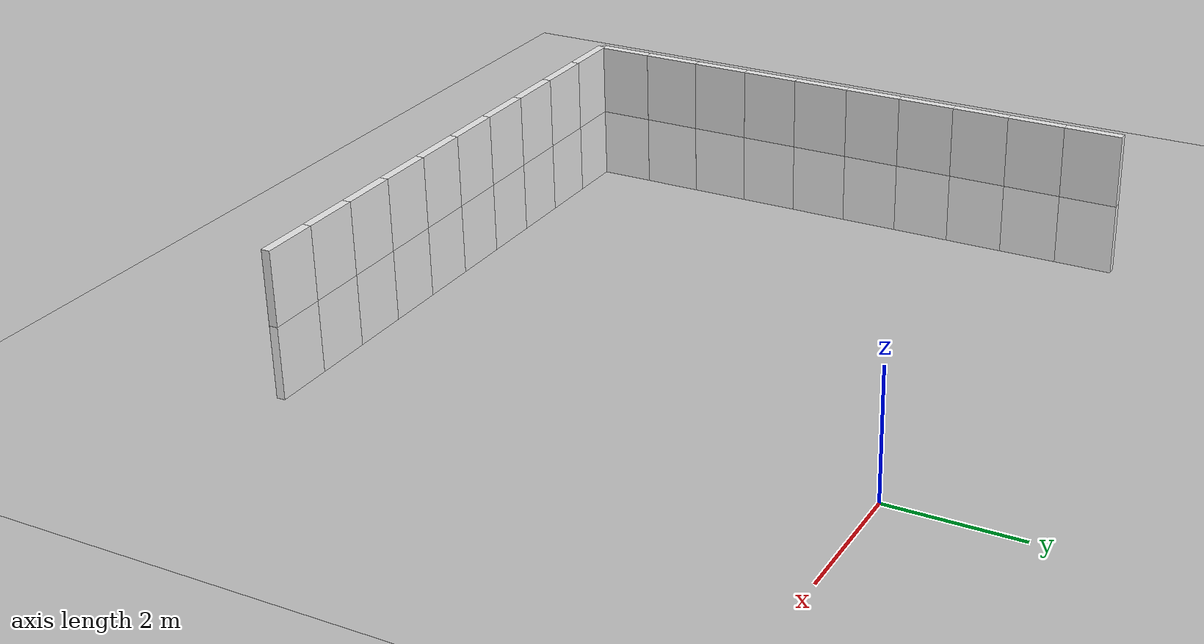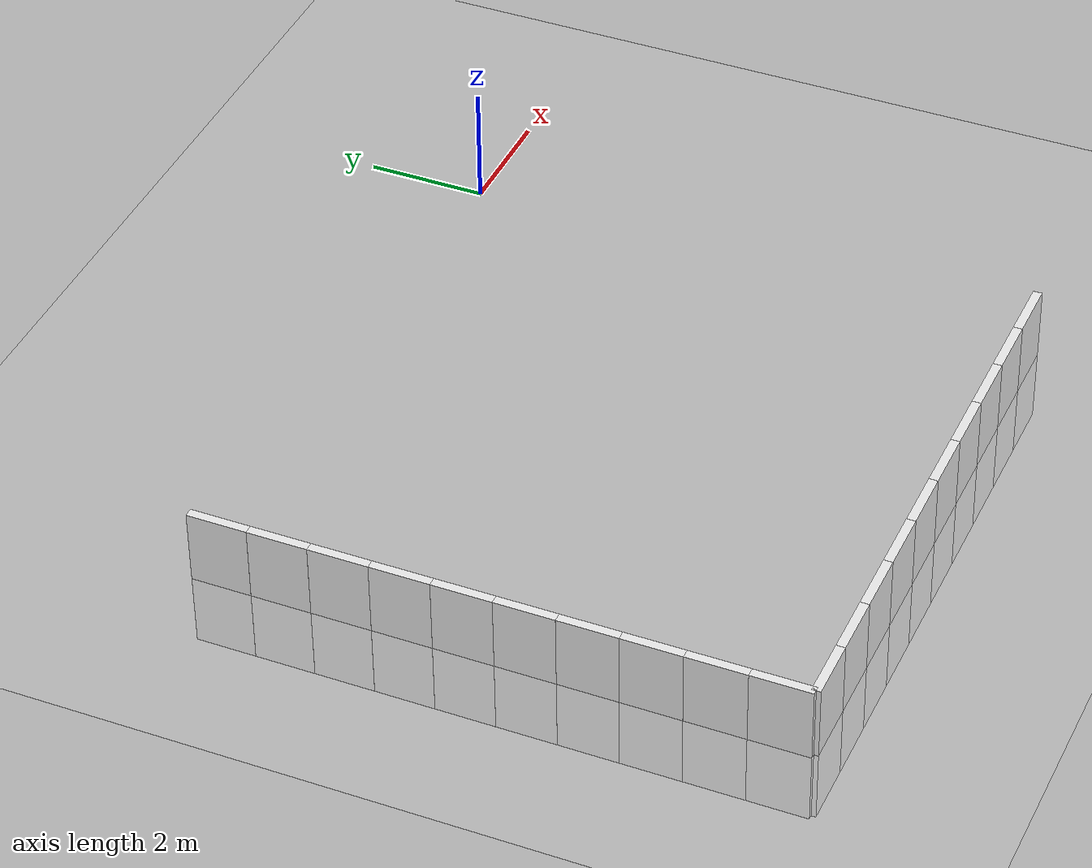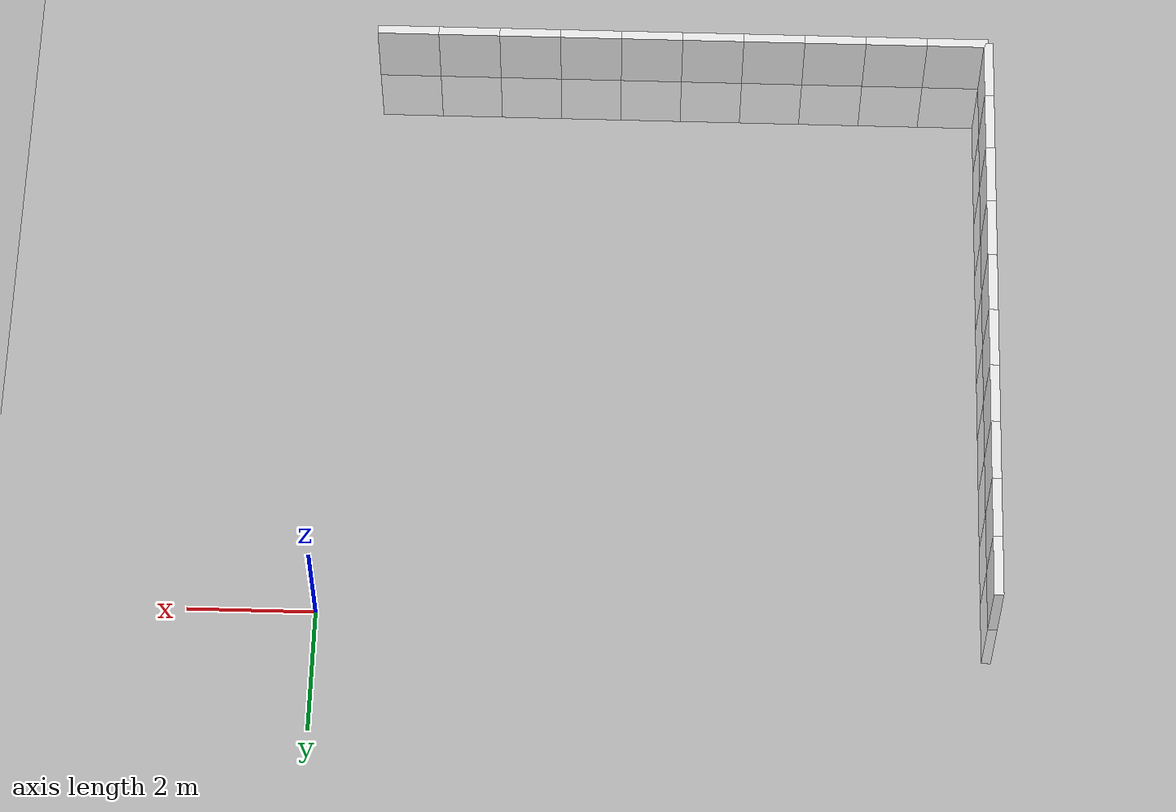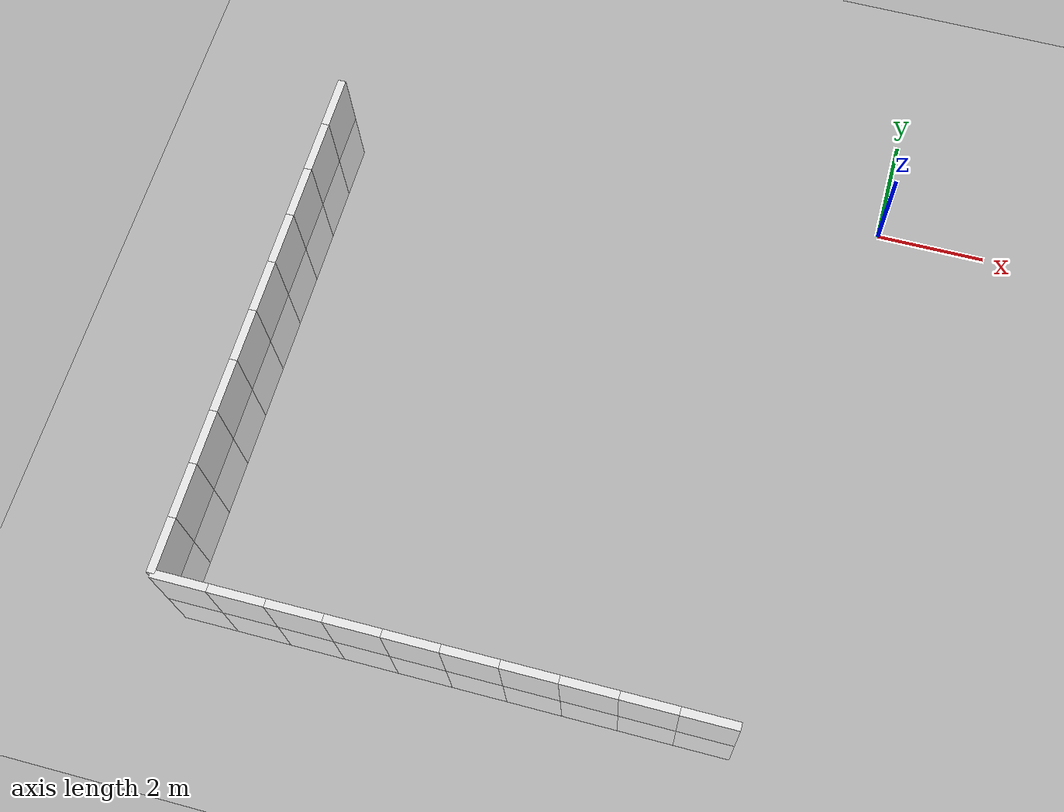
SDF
<sdf version="1.7">
 <world name="default">
  <model name="ground_plane">
   <static>1</static>
   <link name="link">
    <collision name="collision">
     <geometry><plane><normal>0 0 1</normal><size>100 100</size></plane></geometry>
     <surface>
      <contact><collide_bitmask>65535</collide_bitmask></contact>
      <friction><ode><mu>100</mu><mu2>50</mu2></ode></friction>
     </surface>
    </collision>
    <visual name="visual">
     <cast_shadows>0</cast_shadows>
     <geometry><plane><normal>0 0 1</normal><size>100 100</size></plane></geometry>
     <material>
      <script><uri>file://media/materials/scripts/gazebo.material</uri><name>Gazebo/Grey</name></script>
     </material>
    </visual>
   </link>
  </model>
  <model name="wall_right_12">
   <link name="Wall_10">
    <inertial>
     <mass>1</mass>
     <inertia><ixx>1</ixx><ixy>0</ixy><ixz>0</ixz><iyy>1</iyy><iyz>0</iyz><izz>1</izz></inertia>
    </inertial>
    <visual name="Wall_10_Visual_0">
     <geometry><box><size>1 0.15 2.5</size></box></geometry>
     <material>
      <script>
       <uri>model://wall/materials/scripts</uri>
       <uri>model://wall/materials/textures</uri>
       <name>wall_white</name>
      </script>
      <shader type="pixel"><normal_map>__default__</normal_map></shader>
      <ambient>1 1 1 1</ambient>
      <diffuse>1 1 1 1</diffuse>
      <specular>0 0 0 1</specular>
      <emissive>0 0 0 1</emissive>
     </material>
     <meta><layer>0</layer></meta>
    </visual>
    <collision name="Wall_10_Collision_0">
     <geometry><box><size>1 0.15 2.5</size></box></geometry>
     <surface>
      <friction>
       <ode><mu>1</mu><mu2>1</mu2><fdir1>0 0 0</fdir1><slip1>0</slip1><slip2>0</slip2></ode>
       <torsional>
        <coefficient>1</coefficient>
        <patch_radius>0</patch_radius>
        <surface_radius>0</surface_radius>
        <use_patch_radius>1</use_patch_radius>
        <ode><slip>0</slip></ode>
       </torsional>
      </friction>
      <bounce><restitution_coefficient>0</restitution_coefficient><threshold>1e+06</threshold></bounce>
      <contact>
       <collide_without_contact>0</collide_without_contact>
       <collide_without_contact_bitmask>1</collide_without_contact_bitmask>
       <collide_bitmask>1</collide_bitmask>
       <ode>
        <soft_cfm>0</soft_cfm>
        <soft_erp>0.2</soft_erp>
        <kp>1e+13</kp>
        <kd>1</kd>
        <max_vel>0.01</max_vel>
        <min_depth>0</min_depth>
       </ode>
       <bullet>
        <split_impulse>1</split_impulse>
        <split_impulse_penetration_threshold>-0.01</split_impulse_penetration_threshold>
        <soft_cfm>0</soft_cfm>
        <soft_erp>0.2</soft_erp>
        <kp>1e+13</kp>
        <kd>1</kd>
       </bullet>
      </contact>
     </surface>
    </collision>
   </link>
   <static>1</static>
   <pose>-1 -10 0 0 -0 0</pose>
  </model>
  <model name="wall_right_13">
   <link name="Wall_10">
    <inertial>
     <mass>1</mass>
     <inertia><ixx>1</ixx><ixy>0</ixy><ixz>0</ixz><iyy>1</iyy><iyz>0</iyz><izz>1</izz></inertia>
    </inertial>
    <visual name="Wall_10_Visual_0">
     <geometry><box><size>1 0.15 2.5</size></box></geometry>
     <material>
      <script>
       <uri>model://wall/materials/scripts</uri>
       <uri>model://wall/materials/textures</uri>
       <name>wall_white</name>
      </script>
      <shader type="pixel"><normal_map>__default__</normal_map></shader>
      <ambient>1 1 1 1</ambient>
      <diffuse>1 1 1 1</diffuse>
      <specular>0 0 0 1</specular>
      <emissive>0 0 0 1</emissive>
     </material>
     <meta><layer>0</layer></meta>
    </visual>
    <collision name="Wall_10_Collision_0">
     <geometry><box><size>1 0.15 2.5</size></box></geometry>
     <surface>
      <friction>
       <ode><mu>1</mu><mu2>1</mu2><fdir1>0 0 0</fdir1><slip1>0</slip1><slip2>0</slip2></ode>
       <torsional>
        <coefficient>1</coefficient>
        <patch_radius>0</patch_radius>
        <surface_radius>0</surface_radius>
        <use_patch_radius>1</use_patch_radius>
        <ode><slip>0</slip></ode>
       </torsional>
      </friction>
      <bounce><restitution_coefficient>0</restitution_coefficient><threshold>1e+06</threshold></bounce>
      <contact>
       <collide_without_contact>0</collide_without_contact>
       <collide_without_contact_bitmask>1</collide_without_contact_bitmask>
       <collide_bitmask>1</collide_bitmask>
       <ode>
        <soft_cfm>0</soft_cfm>
        <soft_erp>0.2</soft_erp>
        <kp>1e+13</kp>
        <kd>1</kd>
        <max_vel>0.01</max_vel>
        <min_depth>0</min_depth>
       </ode>
       <bullet>
        <split_impulse>1</split_impulse>
        <split_impulse_penetration_threshold>-0.01</split_impulse_penetration_threshold>
        <soft_cfm>0</soft_cfm>
        <soft_erp>0.2</soft_erp>
        <kp>1e+13</kp>
        <kd>1</kd>
       </bullet>
      </contact>
     </surface>
    </collision>
   </link>
   <static>1</static>
   <pose>-2 -10 0 0 -0 0</pose>
  </model>
  <model name="wall_right_14">
   <link name="Wall_10">
    <inertial>
     <mass>1</mass>
     <inertia><ixx>1</ixx><ixy>0</ixy><ixz>0</ixz><iyy>1</iyy><iyz>0</iyz><izz>1</izz></inertia>
    </inertial>
    <visual name="Wall_10_Visual_0">
     <geometry><box><size>1 0.15 2.5</size></box></geometry>
     <material>
      <script>
       <uri>model://wall/materials/scripts</uri>
       <uri>model://wall/materials/textures</uri>
       <name>wall_white</name>
      </script>
      <shader type="pixel"><normal_map>__default__</normal_map></shader>
      <ambient>1 1 1 1</ambient>
      <diffuse>1 1 1 1</diffuse>
      <specular>0 0 0 1</specular>
      <emissive>0 0 0 1</emissive>
     </material>
     <meta><layer>0</layer></meta>
    </visual>
    <collision name="Wall_10_Collision_0">
     <geometry><box><size>1 0.15 2.5</size></box></geometry>
     <surface>
      <friction>
       <ode><mu>1</mu><mu2>1</mu2><fdir1>0 0 0</fdir1><slip1>0</slip1><slip2>0</slip2></ode>
       <torsional>
        <coefficient>1</coefficient>
        <patch_radius>0</patch_radius>
        <surface_radius>0</surface_radius>
        <use_patch_radius>1</use_patch_radius>
        <ode><slip>0</slip></ode>
       </torsional>
      </friction>
      <bounce><restitution_coefficient>0</restitution_coefficient><threshold>1e+06</threshold></bounce>
      <contact>
       <collide_without_contact>0</collide_without_contact>
       <collide_without_contact_bitmask>1</collide_without_contact_bitmask>
       <collide_bitmask>1</collide_bitmask>
       <ode>
        <soft_cfm>0</soft_cfm>
        <soft_erp>0.2</soft_erp>
        <kp>1e+13</kp>
        <kd>1</kd>
        <max_vel>0.01</max_vel>
        <min_depth>0</min_depth>
       </ode>
       <bullet>
        <split_impulse>1</split_impulse>
        <split_impulse_penetration_threshold>-0.01</split_impulse_penetration_threshold>
        <soft_cfm>0</soft_cfm>
        <soft_erp>0.2</soft_erp>
        <kp>1e+13</kp>
        <kd>1</kd>
       </bullet>
      </contact>
     </surface>
    </collision>
   </link>
   <static>1</static>
   <pose>-3 -10 0 0 -0 0</pose>
  </model>
  <model name="wall_right_15">
   <link name="Wall_10">
    <inertial>
     <mass>1</mass>
     <inertia><ixx>1</ixx><ixy>0</ixy><ixz>0</ixz><iyy>1</iyy><iyz>0</iyz><izz>1</izz></inertia>
    </inertial>
    <visual name="Wall_10_Visual_0">
     <geometry><box><size>1 0.15 2.5</size></box></geometry>
     <material>
      <script>
       <uri>model://wall/materials/scripts</uri>
       <uri>model://wall/materials/textures</uri>
       <name>wall_white</name>
      </script>
      <shader type="pixel"><normal_map>__default__</normal_map></shader>
      <ambient>1 1 1 1</ambient>
      <diffuse>1 1 1 1</diffuse>
      <specular>0 0 0 1</specular>
      <emissive>0 0 0 1</emissive>
     </material>
     <meta><layer>0</layer></meta>
    </visual>
    <collision name="Wall_10_Collision_0">
     <geometry><box><size>1 0.15 2.5</size></box></geometry>
     <surface>
      <friction>
       <ode><mu>1</mu><mu2>1</mu2><fdir1>0 0 0</fdir1><slip1>0</slip1><slip2>0</slip2></ode>
       <torsional>
        <coefficient>1</coefficient>
        <patch_radius>0</patch_radius>
        <surface_radius>0</surface_radius>
        <use_patch_radius>1</use_patch_radius>
        <ode><slip>0</slip></ode>
       </torsional>
      </friction>
      <bounce><restitution_coefficient>0</restitution_coefficient><threshold>1e+06</threshold></bounce>
      <contact>
       <collide_without_contact>0</collide_without_contact>
       <collide_without_contact_bitmask>1</collide_without_contact_bitmask>
       <collide_bitmask>1</collide_bitmask>
       <ode>
        <soft_cfm>0</soft_cfm>
        <soft_erp>0.2</soft_erp>
        <kp>1e+13</kp>
        <kd>1</kd>
        <max_vel>0.01</max_vel>
        <min_depth>0</min_depth>
       </ode>
       <bullet>
        <split_impulse>1</split_impulse>
        <split_impulse_penetration_threshold>-0.01</split_impulse_penetration_threshold>
        <soft_cfm>0</soft_cfm>
        <soft_erp>0.2</soft_erp>
        <kp>1e+13</kp>
        <kd>1</kd>
       </bullet>
      </contact>
     </surface>
    </collision>
   </link>
   <static>1</static>
   <pose>-4 -10 0 0 -0 0</pose>
  </model>
  <model name="wall_right_16">
   <link name="Wall_10">
    <inertial>
     <mass>1</mass>
     <inertia><ixx>1</ixx><ixy>0</ixy><ixz>0</ixz><iyy>1</iyy><iyz>0</iyz><izz>1</izz></inertia>
    </inertial>
    <visual name="Wall_10_Visual_0">
     <geometry><box><size>1 0.15 2.5</size></box></geometry>
     <material>
      <script>
       <uri>model://wall/materials/scripts</uri>
       <uri>model://wall/materials/textures</uri>
       <name>wall_white</name>
      </script>
      <shader type="pixel"><normal_map>__default__</normal_map></shader>
      <ambient>1 1 1 1</ambient>
      <diffuse>1 1 1 1</diffuse>
      <specular>0 0 0 1</specular>
      <emissive>0 0 0 1</emissive>
     </material>
     <meta><layer>0</layer></meta>
    </visual>
    <collision name="Wall_10_Collision_0">
     <geometry><box><size>1 0.15 2.5</size></box></geometry>
     <surface>
      <friction>
       <ode><mu>1</mu><mu2>1</mu2><fdir1>0 0 0</fdir1><slip1>0</slip1><slip2>0</slip2></ode>
       <torsional>
        <coefficient>1</coefficient>
        <patch_radius>0</patch_radius>
        <surface_radius>0</surface_radius>
        <use_patch_radius>1</use_patch_radius>
        <ode><slip>0</slip></ode>
       </torsional>
      </friction>
      <bounce><restitution_coefficient>0</restitution_coefficient><threshold>1e+06</threshold></bounce>
      <contact>
       <collide_without_contact>0</collide_without_contact>
       <collide_without_contact_bitmask>1</collide_without_contact_bitmask>
       <collide_bitmask>1</collide_bitmask>
       <ode>
        <soft_cfm>0</soft_cfm>
        <soft_erp>0.2</soft_erp>
        <kp>1e+13</kp>
        <kd>1</kd>
        <max_vel>0.01</max_vel>
        <min_depth>0</min_depth>
       </ode>
       <bullet>
        <split_impulse>1</split_impulse>
        <split_impulse_penetration_threshold>-0.01</split_impulse_penetration_threshold>
        <soft_cfm>0</soft_cfm>
        <soft_erp>0.2</soft_erp>
        <kp>1e+13</kp>
        <kd>1</kd>
       </bullet>
      </contact>
     </surface>
    </collision>
   </link>
   <static>1</static>
   <pose>-5 -10 0 0 -0 0</pose>
  </model>
  <model name="wall_right_17">
   <link name="Wall_10">
    <inertial>
     <mass>1</mass>
     <inertia><ixx>1</ixx><ixy>0</ixy><ixz>0</ixz><iyy>1</iyy><iyz>0</iyz><izz>1</izz></inertia>
    </inertial>
    <visual name="Wall_10_Visual_0">
     <geometry><box><size>1 0.15 2.5</size></box></geometry>
     <material>
      <script>
       <uri>model://wall/materials/scripts</uri>
       <uri>model://wall/materials/textures</uri>
       <name>wall_white</name>
      </script>
      <shader type="pixel"><normal_map>__default__</normal_map></shader>
      <ambient>1 1 1 1</ambient>
      <diffuse>1 1 1 1</diffuse>
      <specular>0 0 0 1</specular>
      <emissive>0 0 0 1</emissive>
     </material>
     <meta><layer>0</layer></meta>
    </visual>
    <collision name="Wall_10_Collision_0">
     <geometry><box><size>1 0.15 2.5</size></box></geometry>
     <surface>
      <friction>
       <ode><mu>1</mu><mu2>1</mu2><fdir1>0 0 0</fdir1><slip1>0</slip1><slip2>0</slip2></ode>
       <torsional>
        <coefficient>1</coefficient>
        <patch_radius>0</patch_radius>
        <surface_radius>0</surface_radius>
        <use_patch_radius>1</use_patch_radius>
        <ode><slip>0</slip></ode>
       </torsional>
      </friction>
      <bounce><restitution_coefficient>0</restitution_coefficient><threshold>1e+06</threshold></bounce>
      <contact>
       <collide_without_contact>0</collide_without_contact>
       <collide_without_contact_bitmask>1</collide_without_contact_bitmask>
       <collide_bitmask>1</collide_bitmask>
       <ode>
        <soft_cfm>0</soft_cfm>
        <soft_erp>0.2</soft_erp>
        <kp>1e+13</kp>
        <kd>1</kd>
        <max_vel>0.01</max_vel>
        <min_depth>0</min_depth>
       </ode>
       <bullet>
        <split_impulse>1</split_impulse>
        <split_impulse_penetration_threshold>-0.01</split_impulse_penetration_threshold>
        <soft_cfm>0</soft_cfm>
        <soft_erp>0.2</soft_erp>
        <kp>1e+13</kp>
        <kd>1</kd>
       </bullet>
      </contact>
     </surface>
    </collision>
   </link>
   <static>1</static>
   <pose>-6 -10 0 0 -0 0</pose>
  </model>
  <model name="wall_right_18">
   <link name="Wall_10">
    <inertial>
     <mass>1</mass>
     <inertia><ixx>1</ixx><ixy>0</ixy><ixz>0</ixz><iyy>1</iyy><iyz>0</iyz><izz>1</izz></inertia>
    </inertial>
    <visual name="Wall_10_Visual_0">
     <geometry><box><size>1 0.15 2.5</size></box></geometry>
     <material>
      <script>
       <uri>model://wall/materials/scripts</uri>
       <uri>model://wall/materials/textures</uri>
       <name>wall_white</name>
      </script>
      <shader type="pixel"><normal_map>__default__</normal_map></shader>
      <ambient>1 1 1 1</ambient>
      <diffuse>1 1 1 1</diffuse>
      <specular>0 0 0 1</specular>
      <emissive>0 0 0 1</emissive>
     </material>
     <meta><layer>0</layer></meta>
    </visual>
    <collision name="Wall_10_Collision_0">
     <geometry><box><size>1 0.15 2.5</size></box></geometry>
     <surface>
      <friction>
       <ode><mu>1</mu><mu2>1</mu2><fdir1>0 0 0</fdir1><slip1>0</slip1><slip2>0</slip2></ode>
       <torsional>
        <coefficient>1</coefficient>
        <patch_radius>0</patch_radius>
        <surface_radius>0</surface_radius>
        <use_patch_radius>1</use_patch_radius>
        <ode><slip>0</slip></ode>
       </torsional>
      </friction>
      <bounce><restitution_coefficient>0</restitution_coefficient><threshold>1e+06</threshold></bounce>
      <contact>
       <collide_without_contact>0</collide_without_contact>
       <collide_without_contact_bitmask>1</collide_without_contact_bitmask>
       <collide_bitmask>1</collide_bitmask>
       <ode>
        <soft_cfm>0</soft_cfm>
        <soft_erp>0.2</soft_erp>
        <kp>1e+13</kp>
        <kd>1</kd>
        <max_vel>0.01</max_vel>
        <min_depth>0</min_depth>
       </ode>
       <bullet>
        <split_impulse>1</split_impulse>
        <split_impulse_penetration_threshold>-0.01</split_impulse_penetration_threshold>
        <soft_cfm>0</soft_cfm>
        <soft_erp>0.2</soft_erp>
        <kp>1e+13</kp>
        <kd>1</kd>
       </bullet>
      </contact>
     </surface>
    </collision>
   </link>
   <static>1</static>
   <pose>-7 -10 0 0 -0 0</pose>
  </model>
  <model name="wall_right_19">
   <link name="Wall_10">
    <inertial>
     <mass>1</mass>
     <inertia><ixx>1</ixx><ixy>0</ixy><ixz>0</ixz><iyy>1</iyy><iyz>0</iyz><izz>1</izz></inertia>
    </inertial>
    <visual name="Wall_10_Visual_0">
     <geometry><box><size>1 0.15 2.5</size></box></geometry>
     <material>
      <script>
       <uri>model://wall/materials/scripts</uri>
       <uri>model://wall/materials/textures</uri>
       <name>wall_white</name>
      </script>
      <shader type="pixel"><normal_map>__default__</normal_map></shader>
      <ambient>1 1 1 1</ambient>
      <diffuse>1 1 1 1</diffuse>
      <specular>0 0 0 1</specular>
      <emissive>0 0 0 1</emissive>
     </material>
     <meta><layer>0</layer></meta>
    </visual>
    <collision name="Wall_10_Collision_0">
     <geometry><box><size>1 0.15 2.5</size></box></geometry>
     <surface>
      <friction>
       <ode><mu>1</mu><mu2>1</mu2><fdir1>0 0 0</fdir1><slip1>0</slip1><slip2>0</slip2></ode>
       <torsional>
        <coefficient>1</coefficient>
        <patch_radius>0</patch_radius>
        <surface_radius>0</surface_radius>
        <use_patch_radius>1</use_patch_radius>
        <ode><slip>0</slip></ode>
       </torsional>
      </friction>
      <bounce><restitution_coefficient>0</restitution_coefficient><threshold>1e+06</threshold></bounce>
      <contact>
       <collide_without_contact>0</collide_without_contact>
       <collide_without_contact_bitmask>1</collide_without_contact_bitmask>
       <collide_bitmask>1</collide_bitmask>
       <ode>
        <soft_cfm>0</soft_cfm>
        <soft_erp>0.2</soft_erp>
        <kp>1e+13</kp>
        <kd>1</kd>
        <max_vel>0.01</max_vel>
        <min_depth>0</min_depth>
       </ode>
       <bullet>
        <split_impulse>1</split_impulse>
        <split_impulse_penetration_threshold>-0.01</split_impulse_penetration_threshold>
        <soft_cfm>0</soft_cfm>
        <soft_erp>0.2</soft_erp>
        <kp>1e+13</kp>
        <kd>1</kd>
       </bullet>
      </contact>
     </surface>
    </collision>
   </link>
   <static>1</static>
   <pose>-8 -10 0 0 -0 0</pose>
  </model>
  <model name="wall_right_20">
   <link name="Wall_10">
    <inertial>
     <mass>1</mass>
     <inertia><ixx>1</ixx><ixy>0</ixy><ixz>0</ixz><iyy>1</iyy><iyz>0</iyz><izz>1</izz></inertia>
    </inertial>
    <visual name="Wall_10_Visual_0">
     <geometry><box><size>1 0.15 2.5</size></box></geometry>
     <material>
      <script>
       <uri>model://wall/materials/scripts</uri>
       <uri>model://wall/materials/textures</uri>
       <name>wall_white</name>
      </script>
      <shader type="pixel"><normal_map>__default__</normal_map></shader>
      <ambient>1 1 1 1</ambient>
      <diffuse>1 1 1 1</diffuse>
      <specular>0 0 0 1</specular>
      <emissive>0 0 0 1</emissive>
     </material>
     <meta><layer>0</layer></meta>
    </visual>
    <collision name="Wall_10_Collision_0">
     <geometry><box><size>1 0.15 2.5</size></box></geometry>
     <surface>
      <friction>
       <ode><mu>1</mu><mu2>1</mu2><fdir1>0 0 0</fdir1><slip1>0</slip1><slip2>0</slip2></ode>
       <torsional>
        <coefficient>1</coefficient>
        <patch_radius>0</patch_radius>
        <surface_radius>0</surface_radius>
        <use_patch_radius>1</use_patch_radius>
        <ode><slip>0</slip></ode>
       </torsional>
      </friction>
      <bounce><restitution_coefficient>0</restitution_coefficient><threshold>1e+06</threshold></bounce>
      <contact>
       <collide_without_contact>0</collide_without_contact>
       <collide_without_contact_bitmask>1</collide_without_contact_bitmask>
       <collide_bitmask>1</collide_bitmask>
       <ode>
        <soft_cfm>0</soft_cfm>
        <soft_erp>0.2</soft_erp>
        <kp>1e+13</kp>
        <kd>1</kd>
        <max_vel>0.01</max_vel>
        <min_depth>0</min_depth>
       </ode>
       <bullet>
        <split_impulse>1</split_impulse>
        <split_impulse_penetration_threshold>-0.01</split_impulse_penetration_threshold>
        <soft_cfm>0</soft_cfm>
        <soft_erp>0.2</soft_erp>
        <kp>1e+13</kp>
        <kd>1</kd>
       </bullet>
      </contact>
     </surface>
    </collision>
   </link>
   <static>1</static>
   <pose>-9 -10 0 0 -0 0</pose>
  </model>
  <model name="wall_right_21">
   <link name="Wall_10">
    <inertial>
     <mass>1</mass>
     <inertia><ixx>1</ixx><ixy>0</ixy><ixz>0</ixz><iyy>1</iyy><iyz>0</iyz><izz>1</izz></inertia>
    </inertial>
    <visual name="Wall_10_Visual_0">
     <geometry><box><size>1 0.15 2.5</size></box></geometry>
     <material>
      <script>
       <uri>model://wall/materials/scripts</uri>
       <uri>model://wall/materials/textures</uri>
       <name>wall_white</name>
      </script>
      <shader type="pixel"><normal_map>__default__</normal_map></shader>
      <ambient>1 1 1 1</ambient>
      <diffuse>1 1 1 1</diffuse>
      <specular>0 0 0 1</specular>
      <emissive>0 0 0 1</emissive>
     </material>
     <meta><layer>0</layer></meta>
    </visual>
    <collision name="Wall_10_Collision_0">
     <geometry><box><size>1 0.15 2.5</size></box></geometry>
     <surface>
      <friction>
       <ode><mu>1</mu><mu2>1</mu2><fdir1>0 0 0</fdir1><slip1>0</slip1><slip2>0</slip2></ode>
       <torsional>
        <coefficient>1</coefficient>
        <patch_radius>0</patch_radius>
        <surface_radius>0</surface_radius>
        <use_patch_radius>1</use_patch_radius>
        <ode><slip>0</slip></ode>
       </torsional>
      </friction>
      <bounce><restitution_coefficient>0</restitution_coefficient><threshold>1e+06</threshold></bounce>
      <contact>
       <collide_without_contact>0</collide_without_contact>
       <collide_without_contact_bitmask>1</collide_without_contact_bitmask>
       <collide_bitmask>1</collide_bitmask>
       <ode>
        <soft_cfm>0</soft_cfm>
        <soft_erp>0.2</soft_erp>
        <kp>1e+13</kp>
        <kd>1</kd>
        <max_vel>0.01</max_vel>
        <min_depth>0</min_depth>
       </ode>
       <bullet>
        <split_impulse>1</split_impulse>
        <split_impulse_penetration_threshold>-0.01</split_impulse_penetration_threshold>
        <soft_cfm>0</soft_cfm>
        <soft_erp>0.2</soft_erp>
        <kp>1e+13</kp>
        <kd>1</kd>
       </bullet>
      </contact>
     </surface>
    </collision>
   </link>
   <static>1</static>
   <pose>-10 -10 0 0 -0 0</pose>
  </model>
  <model name="wall_back_11">
   <link name="Wall_10">
    <inertial>
     <mass>1</mass>
     <inertia><ixx>1</ixx><ixy>0</ixy><ixz>0</ixz><iyy>1</iyy><iyz>0</iyz><izz>1</izz></inertia>
    </inertial>
    <visual name="Wall_10_Visual_0">
     <geometry><box><size>1 0.15 2.5</size></box></geometry>
     <material>
      <script>
       <uri>model://wall/materials/scripts</uri>
       <uri>model://wall/materials/textures</uri>
       <name>wall_white</name>
      </script>
      <shader type="pixel"><normal_map>__default__</normal_map></shader>
      <ambient>1 1 1 1</ambient>
      <diffuse>1 1 1 1</diffuse>
      <specular>0 0 0 1</specular>
      <emissive>0 0 0 1</emissive>
     </material>
     <meta><layer>0</layer></meta>
    </visual>
    <collision name="Wall_10_Collision_0">
     <geometry><box><size>1 0.15 2.5</size></box></geometry>
     <surface>
      <friction>
       <ode><mu>1</mu><mu2>1</mu2><fdir1>0 0 0</fdir1><slip1>0</slip1><slip2>0</slip2></ode>
       <torsional>
        <coefficient>1</coefficient>
        <patch_radius>0</patch_radius>
        <surface_radius>0</surface_radius>
        <use_patch_radius>1</use_patch_radius>
        <ode><slip>0</slip></ode>
       </torsional>
      </friction>
      <bounce><restitution_coefficient>0</restitution_coefficient><threshold>1e+06</threshold></bounce>
      <contact>
       <collide_without_contact>0</collide_without_contact>
       <collide_without_contact_bitmask>1</collide_without_contact_bitmask>
       <collide_bitmask>1</collide_bitmask>
       <ode>
        <soft_cfm>0</soft_cfm>
        <soft_erp>0.2</soft_erp>
        <kp>1e+13</kp>
        <kd>1</kd>
        <max_vel>0.01</max_vel>
        <min_depth>0</min_depth>
       </ode>
       <bullet>
        <split_impulse>1</split_impulse>
        <split_impulse_penetration_threshold>-0.01</split_impulse_penetration_threshold>
        <soft_cfm>0</soft_cfm>
        <soft_erp>0.2</soft_erp>
        <kp>1e+13</kp>
        <kd>1</kd>
       </bullet>
      </contact>
     </surface>
    </collision>
   </link>
   <static>1</static>
   <pose>-10.5 -0.5 0 0 -0 1.57</pose>
  </model>
  <model name="wall_back_12">
   <link name="Wall_10">
    <inertial>
     <mass>1</mass>
     <inertia><ixx>1</ixx><ixy>0</ixy><ixz>0</ixz><iyy>1</iyy><iyz>0</iyz><izz>1</izz></inertia>
    </inertial>
    <visual name="Wall_10_Visual_0">
     <geometry><box><size>1 0.15 2.5</size></box></geometry>
     <material>
      <script>
       <uri>model://wall/materials/scripts</uri>
       <uri>model://wall/materials/textures</uri>
       <name>wall_white</name>
      </script>
      <shader type="pixel"><normal_map>__default__</normal_map></shader>
      <ambient>1 1 1 1</ambient>
      <diffuse>1 1 1 1</diffuse>
      <specular>0 0 0 1</specular>
      <emissive>0 0 0 1</emissive>
     </material>
     <meta><layer>0</layer></meta>
    </visual>
    <collision name="Wall_10_Collision_0">
     <geometry><box><size>1 0.15 2.5</size></box></geometry>
     <surface>
      <friction>
       <ode><mu>1</mu><mu2>1</mu2><fdir1>0 0 0</fdir1><slip1>0</slip1><slip2>0</slip2></ode>
       <torsional>
        <coefficient>1</coefficient>
        <patch_radius>0</patch_radius>
        <surface_radius>0</surface_radius>
        <use_patch_radius>1</use_patch_radius>
        <ode><slip>0</slip></ode>
       </torsional>
      </friction>
      <bounce><restitution_coefficient>0</restitution_coefficient><threshold>1e+06</threshold></bounce>
      <contact>
       <collide_without_contact>0</collide_without_contact>
       <collide_without_contact_bitmask>1</collide_without_contact_bitmask>
       <collide_bitmask>1</collide_bitmask>
       <ode>
        <soft_cfm>0</soft_cfm>
        <soft_erp>0.2</soft_erp>
        <kp>1e+13</kp>
        <kd>1</kd>
        <max_vel>0.01</max_vel>
        <min_depth>0</min_depth>
       </ode>
       <bullet>
        <split_impulse>1</split_impulse>
        <split_impulse_penetration_threshold>-0.01</split_impulse_penetration_threshold>
        <soft_cfm>0</soft_cfm>
        <soft_erp>0.2</soft_erp>
        <kp>1e+13</kp>
        <kd>1</kd>
       </bullet>
      </contact>
     </surface>
    </collision>
   </link>
   <static>1</static>
   <pose>-10.5 -1.5 0 0 -0 1.57</pose>
  </model>
  <model name="wall_back_13">
   <link name="Wall_10">
    <inertial>
     <mass>1</mass>
     <inertia><ixx>1</ixx><ixy>0</ixy><ixz>0</ixz><iyy>1</iyy><iyz>0</iyz><izz>1</izz></inertia>
    </inertial>
    <visual name="Wall_10_Visual_0">
     <geometry><box><size>1 0.15 2.5</size></box></geometry>
     <material>
      <script>
       <uri>model://wall/materials/scripts</uri>
       <uri>model://wall/materials/textures</uri>
       <name>wall_white</name>
      </script>
      <shader type="pixel"><normal_map>__default__</normal_map></shader>
      <ambient>1 1 1 1</ambient>
      <diffuse>1 1 1 1</diffuse>
      <specular>0 0 0 1</specular>
      <emissive>0 0 0 1</emissive>
     </material>
     <meta><layer>0</layer></meta>
    </visual>
    <collision name="Wall_10_Collision_0">
     <geometry><box><size>1 0.15 2.5</size></box></geometry>
     <surface>
      <friction>
       <ode><mu>1</mu><mu2>1</mu2><fdir1>0 0 0</fdir1><slip1>0</slip1><slip2>0</slip2></ode>
       <torsional>
        <coefficient>1</coefficient>
        <patch_radius>0</patch_radius>
        <surface_radius>0</surface_radius>
        <use_patch_radius>1</use_patch_radius>
        <ode><slip>0</slip></ode>
       </torsional>
      </friction>
      <bounce><restitution_coefficient>0</restitution_coefficient><threshold>1e+06</threshold></bounce>
      <contact>
       <collide_without_contact>0</collide_without_contact>
       <collide_without_contact_bitmask>1</collide_without_contact_bitmask>
       <collide_bitmask>1</collide_bitmask>
       <ode>
        <soft_cfm>0</soft_cfm>
        <soft_erp>0.2</soft_erp>
        <kp>1e+13</kp>
        <kd>1</kd>
        <max_vel>0.01</max_vel>
        <min_depth>0</min_depth>
       </ode>
       <bullet>
        <split_impulse>1</split_impulse>
        <split_impulse_penetration_threshold>-0.01</split_impulse_penetration_threshold>
        <soft_cfm>0</soft_cfm>
        <soft_erp>0.2</soft_erp>
        <kp>1e+13</kp>
        <kd>1</kd>
       </bullet>
      </contact>
     </surface>
    </collision>
   </link>
   <static>1</static>
   <pose>-10.5 -2.5 0 0 -0 1.57</pose>
  </model>
  <model name="wall_back_14">
   <link name="Wall_10">
    <inertial>
     <mass>1</mass>
     <inertia><ixx>1</ixx><ixy>0</ixy><ixz>0</ixz><iyy>1</iyy><iyz>0</iyz><izz>1</izz></inertia>
    </inertial>
    <visual name="Wall_10_Visual_0">
     <geometry><box><size>1 0.15 2.5</size></box></geometry>
     <material>
      <script>
       <uri>model://wall/materials/scripts</uri>
       <uri>model://wall/materials/textures</uri>
       <name>wall_white</name>
      </script>
      <shader type="pixel"><normal_map>__default__</normal_map></shader>
      <ambient>1 1 1 1</ambient>
      <diffuse>1 1 1 1</diffuse>
      <specular>0 0 0 1</specular>
      <emissive>0 0 0 1</emissive>
     </material>
     <meta><layer>0</layer></meta>
    </visual>
    <collision name="Wall_10_Collision_0">
     <geometry><box><size>1 0.15 2.5</size></box></geometry>
     <surface>
      <friction>
       <ode><mu>1</mu><mu2>1</mu2><fdir1>0 0 0</fdir1><slip1>0</slip1><slip2>0</slip2></ode>
       <torsional>
        <coefficient>1</coefficient>
        <patch_radius>0</patch_radius>
        <surface_radius>0</surface_radius>
        <use_patch_radius>1</use_patch_radius>
        <ode><slip>0</slip></ode>
       </torsional>
      </friction>
      <bounce><restitution_coefficient>0</restitution_coefficient><threshold>1e+06</threshold></bounce>
      <contact>
       <collide_without_contact>0</collide_without_contact>
       <collide_without_contact_bitmask>1</collide_without_contact_bitmask>
       <collide_bitmask>1</collide_bitmask>
       <ode>
        <soft_cfm>0</soft_cfm>
        <soft_erp>0.2</soft_erp>
        <kp>1e+13</kp>
        <kd>1</kd>
        <max_vel>0.01</max_vel>
        <min_depth>0</min_depth>
       </ode>
       <bullet>
        <split_impulse>1</split_impulse>
        <split_impulse_penetration_threshold>-0.01</split_impulse_penetration_threshold>
        <soft_cfm>0</soft_cfm>
        <soft_erp>0.2</soft_erp>
        <kp>1e+13</kp>
        <kd>1</kd>
       </bullet>
      </contact>
     </surface>
    </collision>
   </link>
   <static>1</static>
   <pose>-10.5 -3.5 0 0 -0 1.57</pose>
  </model>
  <model name="wall_back_15">
   <link name="Wall_10">
    <inertial>
     <mass>1</mass>
     <inertia><ixx>1</ixx><ixy>0</ixy><ixz>0</ixz><iyy>1</iyy><iyz>0</iyz><izz>1</izz></inertia>
    </inertial>
    <visual name="Wall_10_Visual_0">
     <geometry><box><size>1 0.15 2.5</size></box></geometry>
     <material>
      <script>
       <uri>model://wall/materials/scripts</uri>
       <uri>model://wall/materials/textures</uri>
       <name>wall_white</name>
      </script>
      <shader type="pixel"><normal_map>__default__</normal_map></shader>
      <ambient>1 1 1 1</ambient>
      <diffuse>1 1 1 1</diffuse>
      <specular>0 0 0 1</specular>
      <emissive>0 0 0 1</emissive>
     </material>
     <meta><layer>0</layer></meta>
    </visual>
    <collision name="Wall_10_Collision_0">
     <geometry><box><size>1 0.15 2.5</size></box></geometry>
     <surface>
      <friction>
       <ode><mu>1</mu><mu2>1</mu2><fdir1>0 0 0</fdir1><slip1>0</slip1><slip2>0</slip2></ode>
       <torsional>
        <coefficient>1</coefficient>
        <patch_radius>0</patch_radius>
        <surface_radius>0</surface_radius>
        <use_patch_radius>1</use_patch_radius>
        <ode><slip>0</slip></ode>
       </torsional>
      </friction>
      <bounce><restitution_coefficient>0</restitution_coefficient><threshold>1e+06</threshold></bounce>
      <contact>
       <collide_without_contact>0</collide_without_contact>
       <collide_without_contact_bitmask>1</collide_without_contact_bitmask>
       <collide_bitmask>1</collide_bitmask>
       <ode>
        <soft_cfm>0</soft_cfm>
        <soft_erp>0.2</soft_erp>
        <kp>1e+13</kp>
        <kd>1</kd>
        <max_vel>0.01</max_vel>
        <min_depth>0</min_depth>
       </ode>
       <bullet>
        <split_impulse>1</split_impulse>
        <split_impulse_penetration_threshold>-0.01</split_impulse_penetration_threshold>
        <soft_cfm>0</soft_cfm>
        <soft_erp>0.2</soft_erp>
        <kp>1e+13</kp>
        <kd>1</kd>
       </bullet>
      </contact>
     </surface>
    </collision>
   </link>
   <static>1</static>
   <pose>-10.5 -4.5 0 0 -0 1.57</pose>
  </model>
  <model name="wall_back_16">
   <link name="Wall_10">
    <inertial>
     <mass>1</mass>
     <inertia><ixx>1</ixx><ixy>0</ixy><ixz>0</ixz><iyy>1</iyy><iyz>0</iyz><izz>1</izz></inertia>
    </inertial>
    <visual name="Wall_10_Visual_0">
     <geometry><box><size>1 0.15 2.5</size></box></geometry>
     <material>
      <script>
       <uri>model://wall/materials/scripts</uri>
       <uri>model://wall/materials/textures</uri>
       <name>wall_white</name>
      </script>
      <shader type="pixel"><normal_map>__default__</normal_map></shader>
      <ambient>1 1 1 1</ambient>
      <diffuse>1 1 1 1</diffuse>
      <specular>0 0 0 1</specular>
      <emissive>0 0 0 1</emissive>
     </material>
     <meta><layer>0</layer></meta>
    </visual>
    <collision name="Wall_10_Collision_0">
     <geometry><box><size>1 0.15 2.5</size></box></geometry>
     <surface>
      <friction>
       <ode><mu>1</mu><mu2>1</mu2><fdir1>0 0 0</fdir1><slip1>0</slip1><slip2>0</slip2></ode>
       <torsional>
        <coefficient>1</coefficient>
        <patch_radius>0</patch_radius>
        <surface_radius>0</surface_radius>
        <use_patch_radius>1</use_patch_radius>
        <ode><slip>0</slip></ode>
       </torsional>
      </friction>
      <bounce><restitution_coefficient>0</restitution_coefficient><threshold>1e+06</threshold></bounce>
      <contact>
       <collide_without_contact>0</collide_without_contact>
       <collide_without_contact_bitmask>1</collide_without_contact_bitmask>
       <collide_bitmask>1</collide_bitmask>
       <ode>
        <soft_cfm>0</soft_cfm>
        <soft_erp>0.2</soft_erp>
        <kp>1e+13</kp>
        <kd>1</kd>
        <max_vel>0.01</max_vel>
        <min_depth>0</min_depth>
       </ode>
       <bullet>
        <split_impulse>1</split_impulse>
        <split_impulse_penetration_threshold>-0.01</split_impulse_penetration_threshold>
        <soft_cfm>0</soft_cfm>
        <soft_erp>0.2</soft_erp>
        <kp>1e+13</kp>
        <kd>1</kd>
       </bullet>
      </contact>
     </surface>
    </collision>
   </link>
   <static>1</static>
   <pose>-10.5 -5.5 0 0 -0 1.57</pose>
  </model>
  <model name="wall_back_17">
   <link name="Wall_10">
    <inertial>
     <mass>1</mass>
     <inertia><ixx>1</ixx><ixy>0</ixy><ixz>0</ixz><iyy>1</iyy><iyz>0</iyz><izz>1</izz></inertia>
    </inertial>
    <visual name="Wall_10_Visual_0">
     <geometry><box><size>1 0.15 2.5</size></box></geometry>
     <material>
      <script>
       <uri>model://wall/materials/scripts</uri>
       <uri>model://wall/materials/textures</uri>
       <name>wall_white</name>
      </script>
      <shader type="pixel"><normal_map>__default__</normal_map></shader>
      <ambient>1 1 1 1</ambient>
      <diffuse>1 1 1 1</diffuse>
      <specular>0 0 0 1</specular>
      <emissive>0 0 0 1</emissive>
     </material>
     <meta><layer>0</layer></meta>
    </visual>
    <collision name="Wall_10_Collision_0">
     <geometry><box><size>1 0.15 2.5</size></box></geometry>
     <surface>
      <friction>
       <ode><mu>1</mu><mu2>1</mu2><fdir1>0 0 0</fdir1><slip1>0</slip1><slip2>0</slip2></ode>
       <torsional>
        <coefficient>1</coefficient>
        <patch_radius>0</patch_radius>
        <surface_radius>0</surface_radius>
        <use_patch_radius>1</use_patch_radius>
        <ode><slip>0</slip></ode>
       </torsional>
      </friction>
      <bounce><restitution_coefficient>0</restitution_coefficient><threshold>1e+06</threshold></bounce>
      <contact>
       <collide_without_contact>0</collide_without_contact>
       <collide_without_contact_bitmask>1</collide_without_contact_bitmask>
       <collide_bitmask>1</collide_bitmask>
       <ode>
        <soft_cfm>0</soft_cfm>
        <soft_erp>0.2</soft_erp>
        <kp>1e+13</kp>
        <kd>1</kd>
        <max_vel>0.01</max_vel>
        <min_depth>0</min_depth>
       </ode>
       <bullet>
        <split_impulse>1</split_impulse>
        <split_impulse_penetration_threshold>-0.01</split_impulse_penetration_threshold>
        <soft_cfm>0</soft_cfm>
        <soft_erp>0.2</soft_erp>
        <kp>1e+13</kp>
        <kd>1</kd>
       </bullet>
      </contact>
     </surface>
    </collision>
   </link>
   <static>1</static>
   <pose>-10.5 -6.5 0 0 -0 1.57</pose>
  </model>
  <model name="wall_back_18">
   <link name="Wall_10">
    <inertial>
     <mass>1</mass>
     <inertia><ixx>1</ixx><ixy>0</ixy><ixz>0</ixz><iyy>1</iyy><iyz>0</iyz><izz>1</izz></inertia>
    </inertial>
    <visual name="Wall_10_Visual_0">
     <geometry><box><size>1 0.15 2.5</size></box></geometry>
     <material>
      <script>
       <uri>model://wall/materials/scripts</uri>
       <uri>model://wall/materials/textures</uri>
       <name>wall_white</name>
      </script>
      <shader type="pixel"><normal_map>__default__</normal_map></shader>
      <ambient>1 1 1 1</ambient>
      <diffuse>1 1 1 1</diffuse>
      <specular>0 0 0 1</specular>
      <emissive>0 0 0 1</emissive>
     </material>
     <meta><layer>0</layer></meta>
    </visual>
    <collision name="Wall_10_Collision_0">
     <geometry><box><size>1 0.15 2.5</size></box></geometry>
     <surface>
      <friction>
       <ode><mu>1</mu><mu2>1</mu2><fdir1>0 0 0</fdir1><slip1>0</slip1><slip2>0</slip2></ode>
       <torsional>
        <coefficient>1</coefficient>
        <patch_radius>0</patch_radius>
        <surface_radius>0</surface_radius>
        <use_patch_radius>1</use_patch_radius>
        <ode><slip>0</slip></ode>
       </torsional>
      </friction>
      <bounce><restitution_coefficient>0</restitution_coefficient><threshold>1e+06</threshold></bounce>
      <contact>
       <collide_without_contact>0</collide_without_contact>
       <collide_without_contact_bitmask>1</collide_without_contact_bitmask>
       <collide_bitmask>1</collide_bitmask>
       <ode>
        <soft_cfm>0</soft_cfm>
        <soft_erp>0.2</soft_erp>
        <kp>1e+13</kp>
        <kd>1</kd>
        <max_vel>0.01</max_vel>
        <min_depth>0</min_depth>
       </ode>
       <bullet>
        <split_impulse>1</split_impulse>
        <split_impulse_penetration_threshold>-0.01</split_impulse_penetration_threshold>
        <soft_cfm>0</soft_cfm>
        <soft_erp>0.2</soft_erp>
        <kp>1e+13</kp>
        <kd>1</kd>
       </bullet>
      </contact>
     </surface>
    </collision>
   </link>
   <static>1</static>
   <pose>-10.5 -7.5 0 0 -0 1.57</pose>
  </model>
  <model name="wall_back_19">
   <link name="Wall_10">
    <inertial>
     <mass>1</mass>
     <inertia><ixx>1</ixx><ixy>0</ixy><ixz>0</ixz><iyy>1</iyy><iyz>0</iyz><izz>1</izz></inertia>
    </inertial>
    <visual name="Wall_10_Visual_0">
     <geometry><box><size>1 0.15 2.5</size></box></geometry>
     <material>
      <script>
       <uri>model://wall/materials/scripts</uri>
       <uri>model://wall/materials/textures</uri>
       <name>wall_white</name>
      </script>
      <shader type="pixel"><normal_map>__default__</normal_map></shader>
      <ambient>1 1 1 1</ambient>
      <diffuse>1 1 1 1</diffuse>
      <specular>0 0 0 1</specular>
      <emissive>0 0 0 1</emissive>
     </material>
     <meta><layer>0</layer></meta>
    </visual>
    <collision name="Wall_10_Collision_0">
     <geometry><box><size>1 0.15 2.5</size></box></geometry>
     <surface>
      <friction>
       <ode><mu>1</mu><mu2>1</mu2><fdir1>0 0 0</fdir1><slip1>0</slip1><slip2>0</slip2></ode>
       <torsional>
        <coefficient>1</coefficient>
        <patch_radius>0</patch_radius>
        <surface_radius>0</surface_radius>
        <use_patch_radius>1</use_patch_radius>
        <ode><slip>0</slip></ode>
       </torsional>
      </friction>
      <bounce><restitution_coefficient>0</restitution_coefficient><threshold>1e+06</threshold></bounce>
      <contact>
       <collide_without_contact>0</collide_without_contact>
       <collide_without_contact_bitmask>1</collide_without_contact_bitmask>
       <collide_bitmask>1</collide_bitmask>
       <ode>
        <soft_cfm>0</soft_cfm>
        <soft_erp>0.2</soft_erp>
        <kp>1e+13</kp>
        <kd>1</kd>
        <max_vel>0.01</max_vel>
        <min_depth>0</min_depth>
       </ode>
       <bullet>
        <split_impulse>1</split_impulse>
        <split_impulse_penetration_threshold>-0.01</split_impulse_penetration_threshold>
        <soft_cfm>0</soft_cfm>
        <soft_erp>0.2</soft_erp>
        <kp>1e+13</kp>
        <kd>1</kd>
       </bullet>
      </contact>
     </surface>
    </collision>
   </link>
   <static>1</static>
   <pose>-10.5 -8.5 0 0 -0 1.57</pose>
  </model>
  <model name="wall_back_20">
   <link name="Wall_10">
    <inertial>
     <mass>1</mass>
     <inertia><ixx>1</ixx><ixy>0</ixy><ixz>0</ixz><iyy>1</iyy><iyz>0</iyz><izz>1</izz></inertia>
    </inertial>
    <visual name="Wall_10_Visual_0">
     <geometry><box><size>1 0.15 2.5</size></box></geometry>
     <material>
      <script>
       <uri>model://wall/materials/scripts</uri>
       <uri>model://wall/materials/textures</uri>
       <name>wall_white</name>
      </script>
      <shader type="pixel"><normal_map>__default__</normal_map></shader>
      <ambient>1 1 1 1</ambient>
      <diffuse>1 1 1 1</diffuse>
      <specular>0 0 0 1</specular>
      <emissive>0 0 0 1</emissive>
     </material>
     <meta><layer>0</layer></meta>
    </visual>
    <collision name="Wall_10_Collision_0">
     <geometry><box><size>1 0.15 2.5</size></box></geometry>
     <surface>
      <friction>
       <ode><mu>1</mu><mu2>1</mu2><fdir1>0 0 0</fdir1><slip1>0</slip1><slip2>0</slip2></ode>
       <torsional>
        <coefficient>1</coefficient>
        <patch_radius>0</patch_radius>
        <surface_radius>0</surface_radius>
        <use_patch_radius>1</use_patch_radius>
        <ode><slip>0</slip></ode>
       </torsional>
      </friction>
      <bounce><restitution_coefficient>0</restitution_coefficient><threshold>1e+06</threshold></bounce>
      <contact>
       <collide_without_contact>0</collide_without_contact>
       <collide_without_contact_bitmask>1</collide_without_contact_bitmask>
       <collide_bitmask>1</collide_bitmask>
       <ode>
        <soft_cfm>0</soft_cfm>
        <soft_erp>0.2</soft_erp>
        <kp>1e+13</kp>
        <kd>1</kd>
        <max_vel>0.01</max_vel>
        <min_depth>0</min_depth>
       </ode>
       <bullet>
        <split_impulse>1</split_impulse>
        <split_impulse_penetration_threshold>-0.01</split_impulse_penetration_threshold>
        <soft_cfm>0</soft_cfm>
        <soft_erp>0.2</soft_erp>
        <kp>1e+13</kp>
        <kd>1</kd>
       </bullet>
      </contact>
     </surface>
    </collision>
   </link>
   <static>1</static>
   <pose>-10.5 -9.5 0 0 -0 1.57</pose>
  </model>
 </world>
</sdf>
